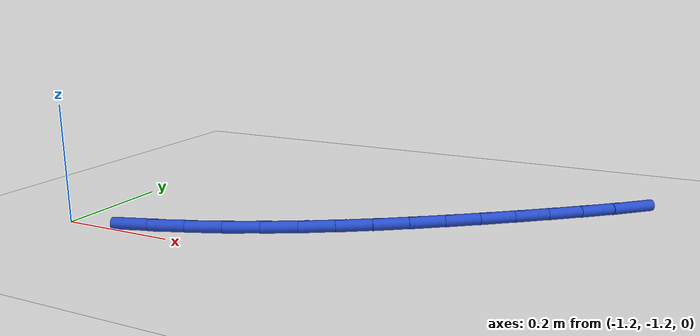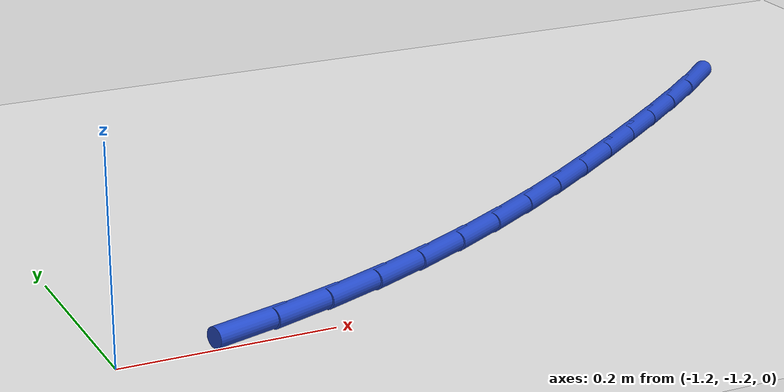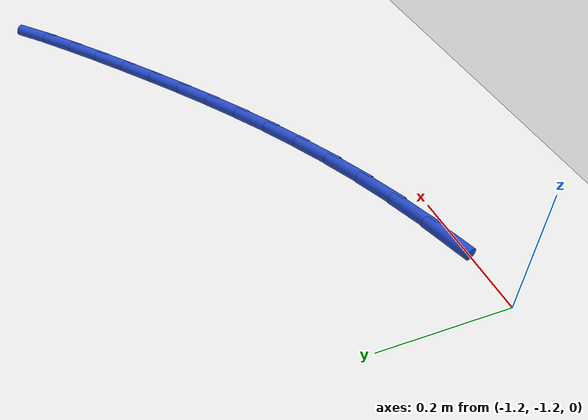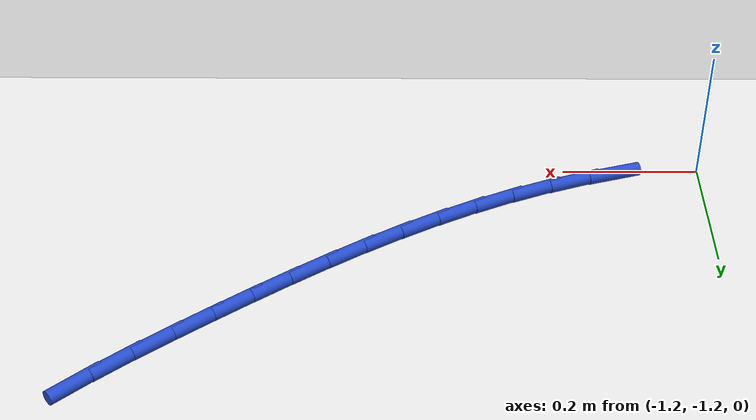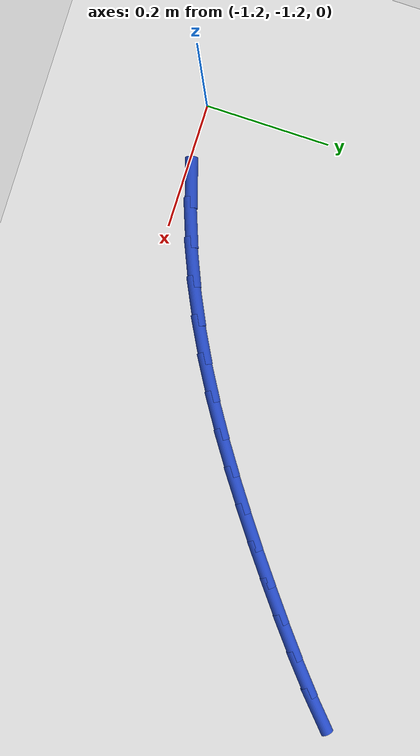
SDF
<sdf version="1.6">
 <world name="default">
  <model name="ground_plane">
   <static>1</static>
   <link name="link">
    <collision name="collision">
     <geometry><plane><normal>0 0 1</normal><size>100 100</size></plane></geometry>
     <surface><friction><ode><mu>100</mu><mu2>50</mu2></ode></friction></surface>
    </collision>
    <visual name="visual">
     <cast_shadows>0</cast_shadows>
     <geometry><plane><normal>0 0 1</normal><size>100 100</size></plane></geometry>
     <material>
      <script><uri>file://media/materials/scripts/gazebo.material</uri><name>Gazebo/WhiteGlow</name></script>
     </material>
    </visual>
   </link>
  </model>
  <model name="line">
   <link name="link_92">
    <pose>-1.0728541009913115 -1.1841668443486022 0.01 0 1.57 0.3015357441785376</pose>
    <collision name="collision">
     <geometry><cylinder><radius>0.01</radius><length>0.08</length></cylinder></geometry>
    </collision>
    <visual name="visual">
     <material>
      <script><name>Gazebo/Blue</name><uri>file://media/materials/scripts/gazebo.material</uri></script>
     </material>
     <geometry><cylinder><radius>0.01</radius><length>0.08</length></cylinder></geometry>
    </visual>
   </link>
   <link name="link_93">
    <pose>-1.0132464805626504 -1.1656276972299278 0.01 0 1.57 0.3552573528839548</pose>
    <collision name="collision">
     <geometry><cylinder><radius>0.01</radius><length>0.08</length></cylinder></geometry>
    </collision>
    <visual name="visual">
     <material>
      <script><name>Gazebo/Blue</name><uri>file://media/materials/scripts/gazebo.material</uri></script>
     </material>
     <geometry><cylinder><radius>0.01</radius><length>0.08</length></cylinder></geometry>
    </visual>
   </link>
   <link name="link_94">
    <pose>-0.9555338335072223 -1.1442164276004982 0.01 0 1.57 0.40572683692517686</pose>
    <collision name="collision">
     <geometry><cylinder><radius>0.01</radius><length>0.08</length></cylinder></geometry>
    </collision>
    <visual name="visual">
     <material>
      <script><name>Gazebo/Blue</name><uri>file://media/materials/scripts/gazebo.material</uri></script>
     </material>
     <geometry><cylinder><radius>0.01</radius><length>0.08</length></cylinder></geometry>
    </visual>
   </link>
   <link name="link_95">
    <pose>-0.8995434460823533 -1.1201651850228953 0.01 0 1.57 0.45239715134967984</pose>
    <collision name="collision">
     <geometry><cylinder><radius>0.01</radius><length>0.08</length></cylinder></geometry>
    </collision>
    <visual name="visual">
     <material>
      <script><name>Gazebo/Blue</name><uri>file://media/materials/scripts/gazebo.material</uri></script>
     </material>
     <geometry><cylinder><radius>0.01</radius><length>0.08</length></cylinder></geometry>
    </visual>
   </link>
   <link name="link_96">
    <pose>-0.8451026045453691 -1.0937061190597006 0.01 0 1.57 0.4948439563096728</pose>
    <collision name="collision">
     <geometry><cylinder><radius>0.01</radius><length>0.08</length></cylinder></geometry>
    </collision>
    <visual name="visual">
     <material>
      <script><name>Gazebo/Blue</name><uri>file://media/materials/scripts/gazebo.material</uri></script>
     </material>
     <geometry><cylinder><radius>0.01</radius><length>0.08</length></cylinder></geometry>
    </visual>
   </link>
   <link name="link_97">
    <pose>-0.7920385951535973 -1.0650713792734976 0.01 0 1.57 0.532761272616865</pose>
    <collision name="collision">
     <geometry><cylinder><radius>0.01</radius><length>0.08</length></cylinder></geometry>
    </collision>
    <visual name="visual">
     <material>
      <script><name>Gazebo/Blue</name><uri>file://media/materials/scripts/gazebo.material</uri></script>
     </material>
     <geometry><cylinder><radius>0.01</radius><length>0.08</length></cylinder></geometry>
    </visual>
   </link>
   <link name="link_98">
    <pose>-0.7401787041643634 -1.0344931152268673 0.01 0 1.57 0.5659479844309263</pose>
    <collision name="collision">
     <geometry><cylinder><radius>0.01</radius><length>0.08</length></cylinder></geometry>
    </collision>
    <visual name="visual">
     <material>
      <script><name>Gazebo/Blue</name><uri>file://media/materials/scripts/gazebo.material</uri></script>
     </material>
     <geometry><cylinder><radius>0.01</radius><length>0.08</length></cylinder></geometry>
    </visual>
   </link>
   <link name="link_99">
    <pose>-0.6893502178349932 -1.0022034764823915 0.01 0 1.57 0.594289110559095</pose>
    <collision name="collision">
     <geometry><cylinder><radius>0.01</radius><length>0.08</length></cylinder></geometry>
    </collision>
    <visual name="visual">
     <material>
      <script><name>Gazebo/Blue</name><uri>file://media/materials/scripts/gazebo.material</uri></script>
     </material>
     <geometry><cylinder><radius>0.01</radius><length>0.08</length></cylinder></geometry>
    </visual>
   </link>
   <link name="link_100">
    <pose>-0.6393804224228128 -0.968434612602653 0.01 0 1.57 0.617735360471436</pose>
    <collision name="collision">
     <geometry><cylinder><radius>0.01</radius><length>0.08</length></cylinder></geometry>
    </collision>
    <visual name="visual">
     <material>
      <script><name>Gazebo/Blue</name><uri>file://media/materials/scripts/gazebo.material</uri></script>
     </material>
     <geometry><cylinder><radius>0.01</radius><length>0.08</length></cylinder></geometry>
    </visual>
   </link>
   <link name="link_101">
    <pose>-0.5900966041851494 -0.9334186731502335 0.01 0 1.57 0.6362836076737921</pose>
    <collision name="collision">
     <geometry><cylinder><radius>0.01</radius><length>0.08</length></cylinder></geometry>
    </collision>
    <visual name="visual">
     <material>
      <script><name>Gazebo/Blue</name><uri>file://media/materials/scripts/gazebo.material</uri></script>
     </material>
     <geometry><cylinder><radius>0.01</radius><length>0.08</length></cylinder></geometry>
    </visual>
   </link>
   <link name="link_102">
    <pose>-0.5413260493793286 -0.8973878076877153 0.01 0 1.57 0.6499663090710641</pose>
    <collision name="collision">
     <geometry><cylinder><radius>0.01</radius><length>0.08</length></cylinder></geometry>
    </collision>
    <visual name="visual">
     <material>
      <script><name>Gazebo/Blue</name><uri>file://media/materials/scripts/gazebo.material</uri></script>
     </material>
     <geometry><cylinder><radius>0.01</radius><length>0.08</length></cylinder></geometry>
    </visual>
   </link>
   <link name="link_103">
    <pose>-0.49289634404678767 -0.8605739071642717 0.01 0 1.57 0.6618222442243685</pose>
    <collision name="collision">
     <geometry><cylinder><radius>0.01</radius><length>0.08</length></cylinder></geometry>
    </collision>
    <visual name="visual">
     <material>
      <script><name>Gazebo/Blue</name><uri>file://media/materials/scripts/gazebo.material</uri></script>
     </material>
     <geometry><cylinder><radius>0.01</radius><length>0.08</length></cylinder></geometry>
    </visual>
   </link>
   <link name="link_104">
    <pose>-0.4447763182378397 -0.8230870161963627 0.01 0 1.57 0.6796736897208318</pose>
    <collision name="collision">
     <geometry><cylinder><radius>0.01</radius><length>0.08</length></cylinder></geometry>
    </collision>
    <visual name="visual">
     <material>
      <script><name>Gazebo/Blue</name><uri>file://media/materials/scripts/gazebo.material</uri></script>
     </material>
     <geometry><cylinder><radius>0.01</radius><length>0.08</length></cylinder></geometry>
    </visual>
   </link>
   <link name="link_105">
    <pose>-0.397301058359552 -0.7847212226794628 0.01 0 1.57 0.7048672366946404</pose>
    <collision name="collision">
     <geometry><cylinder><radius>0.01</radius><length>0.08</length></cylinder></geometry>
    </collision>
    <visual name="visual">
     <material>
      <script><name>Gazebo/Blue</name><uri>file://media/materials/scripts/gazebo.material</uri></script>
     </material>
     <geometry><cylinder><radius>0.01</radius><length>0.08</length></cylinder></geometry>
    </visual>
   </link>
   <link name="link_106">
    <pose>-0.350864241835269 -0.7452200700610344 0.01 0 1.57 0.7375669283743929</pose>
    <collision name="collision">
     <geometry><cylinder><radius>0.01</radius><length>0.08</length></cylinder></geometry>
    </collision>
    <visual name="visual">
     <material>
      <script><name>Gazebo/Blue</name><uri>file://media/materials/scripts/gazebo.material</uri></script>
     </material>
     <geometry><cylinder><radius>0.01</radius><length>0.08</length></cylinder></geometry>
    </visual>
   </link>
  </model>
 </world>
</sdf>
